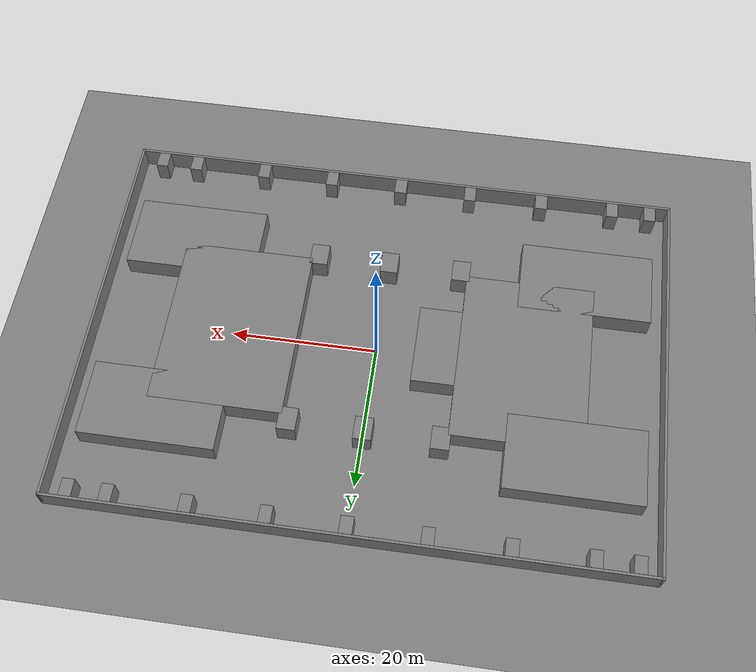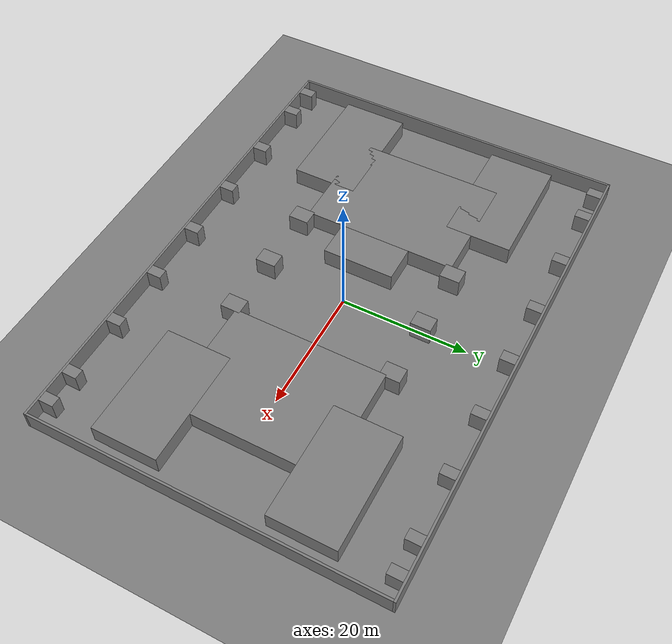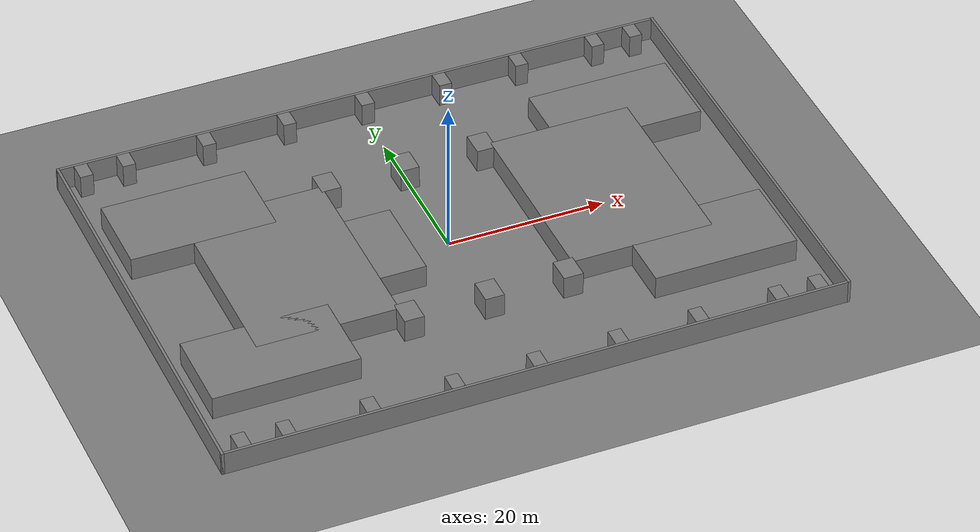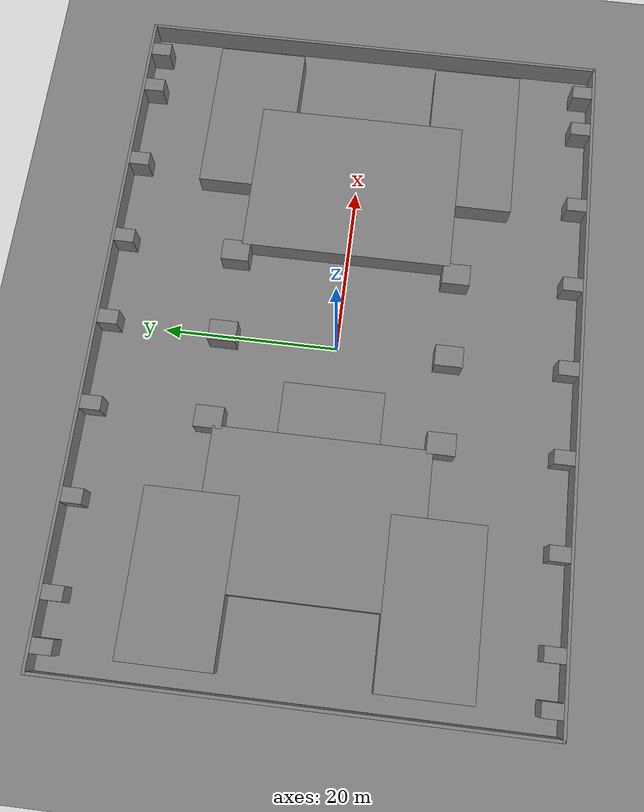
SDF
<?xml version="1.0" ?>
<sdf version="1.9">
  <world name="mbr_library">

    <physics name="1ms" type="ignored">
      <max_step_size>0.001</max_step_size>
      <real_time_factor>1.0</real_time_factor>
    </physics>

    <plugin filename="gz-sim-physics-system"
            name="gz::sim::systems::Physics"/>
    <plugin filename="gz-sim-scene-broadcaster-system"
            name="gz::sim::systems::SceneBroadcaster"/>
    <plugin filename="gz-sim-user-commands-system"
            name="gz::sim::systems::UserCommands"/>
    <plugin filename="gz-sim-sensors-system"
            name="gz::sim::systems::Sensors"/>

    <light type="directional" name="sun">
      <cast_shadows>true</cast_shadows>
      <pose>0 0 10 0 0 0</pose>

      <direction>-0.5 0.1 -1</direction>

      <diffuse>1.0 1.0 1.0 1</diffuse>
      <specular>0.3 0.3 0.3 1</specular>

      <attenuation>
        <range>1000</range>
        <constant>0.9</constant>
        <linear>0.01</linear>
        <quadratic>0.001</quadratic>
      </attenuation>
    </light>

    <scene>
      <ambient>0.5 0.5 0.5 1</ambient>
      <background>0.8 0.8 0.9 1</background>
    </scene>

    <!-- Ground plane -->
    <model name="ground_plane">
      <static>true</static>
      <link name="link">
        <collision name="collision">
          <geometry><plane><normal>0 0 1</normal></plane></geometry>
        </collision>
        <visual name="visual">
          <geometry><plane><normal>0 0 1</normal><size>200 200</size></plane></geometry>
          <material>
            <ambient>0.5 0.5 0.5 1</ambient>
            <diffuse>0.5 0.5 0.5 1</diffuse>
            <specular>0.1 0.1 0.1 1</specular>
          </material>
        </visual>
      </link>
    </model>

    <!-- Outer Walls -->
    <model name="wall_north">
      <static>true</static>
      <pose>0.000 27.601 1.500 0 0 0</pose>
      <link name="link">
        <collision name="collision">
          <geometry><box><size>78.231 0.354 3.0</size></box></geometry>
        </collision>
        <visual name="visual">
          <geometry><box><size>78.231 0.354 3.0</size></box></geometry>
          <material>
            <ambient>0.5 0.5 0.5 1</ambient>
            <diffuse>0.5 0.5 0.5 1</diffuse>
            <specular>0.1 0.1 0.1 1</specular>
          </material>
        </visual>
      </link>
    </model>

    <model name="wall_south">
      <static>true</static>
      <pose>0.000 -27.601 1.500 0 0 0</pose>
      <link name="link">
        <collision name="collision">
          <geometry><box><size>78.231 0.354 3.0</size></box></geometry>
        </collision>
        <visual name="visual">
          <geometry><box><size>78.231 0.354 3.0</size></box></geometry>
          <material>
            <ambient>0.5 0.5 0.5 1</ambient>
            <diffuse>0.5 0.5 0.5 1</diffuse>
            <specular>0.1 0.1 0.1 1</specular>
          </material>
        </visual>
      </link>
    </model>

    <model name="wall_west">
      <static>true</static>
      <pose>-38.938 0.000 1.500 0 0 0</pose>
      <link name="link">
        <collision name="collision">
          <geometry><box><size>0.354 55.556 3.0</size></box></geometry>
        </collision>
        <visual name="visual">
          <geometry><box><size>0.354 55.556 3.0</size></box></geometry>
          <material>
            <ambient>0.5 0.5 0.5 1</ambient>
            <diffuse>0.5 0.5 0.5 1</diffuse>
            <specular>0.1 0.1 0.1 1</specular>
          </material>
        </visual>
      </link>
    </model>

    <model name="wall_east">
      <static>true</static>
      <pose>38.938 0.000 1.500 0 0 0</pose>
      <link name="link">
        <collision name="collision">
          <geometry><box><size>0.354 55.556 3.0</size></box></geometry>
        </collision>
        <visual name="visual">
          <geometry><box><size>0.354 55.556 3.0</size></box></geometry>
          <material>
            <ambient>0.5 0.5 0.5 1</ambient>
            <diffuse>0.5 0.5 0.5 1</diffuse>
            <specular>0.1 0.1 0.1 1</specular>
          </material>
        </visual>
      </link>
    </model>

    <!-- Pillars boardering north wall -->
    <model name="wall_north_a">
      <static>true</static>
      <pose>-36.175 26.254 1.500 0 0 0</pose>
      <link name="link">
        <collision name="collision">
          <geometry><box><size>1.630 2.338 3.0</size></box></geometry>
        </collision>
        <visual name="visual">
          <geometry><box><size>1.630 2.338 3.0</size></box></geometry>
          <material>
            <ambient>0.5 0.5 0.5 1</ambient>
            <diffuse>0.5 0.5 0.5 1</diffuse>
            <specular>0.1 0.1 0.1 1</specular>
          </material>
        </visual>
      </link>
    </model>

    <model name="wall_north_b">
      <static>true</static>
      <pose>-30.789 26.254 1.500 0 0 0</pose>
      <link name="link">
        <collision name="collision">
          <geometry><box><size>1.630 2.338 3.0</size></box></geometry>
        </collision>
        <visual name="visual">
          <geometry><box><size>1.630 2.338 3.0</size></box></geometry>
          <material>
            <ambient>0.5 0.5 0.5 1</ambient>
            <diffuse>0.5 0.5 0.5 1</diffuse>
            <specular>0.1 0.1 0.1 1</specular>
          </material>
        </visual>
      </link>
    </model>

    <model name="wall_north_c">
      <static>true</static>
      <pose>-20.550 26.254 1.500 0 0 0</pose>
      <link name="link">
        <collision name="collision">
          <geometry><box><size>1.701 2.338 3.0</size></box></geometry>
        </collision>
        <visual name="visual">
          <geometry><box><size>1.701 2.338 3.0</size></box></geometry>
          <material>
            <ambient>0.5 0.5 0.5 1</ambient>
            <diffuse>0.5 0.5 0.5 1</diffuse>
            <specular>0.1 0.1 0.1 1</specular>
          </material>
        </visual>
      </link>
    </model>

    <model name="wall_north_d">
      <static>true</static>
      <pose>-10.169 26.254 1.500 0 0 0</pose>
      <link name="link">
        <collision name="collision">
          <geometry><box><size>1.630 2.338 3.0</size></box></geometry>
        </collision>
        <visual name="visual">
          <geometry><box><size>1.630 2.338 3.0</size></box></geometry>
          <material>
            <ambient>0.5 0.5 0.5 1</ambient>
            <diffuse>0.5 0.5 0.5 1</diffuse>
            <specular>0.1 0.1 0.1 1</specular>
          </material>
        </visual>
      </link>
    </model>

    <model name="wall_north_e">
      <static>true</static>
      <pose>0.000 26.254 1.500 0 0 0</pose>
      <link name="link">
        <collision name="collision">
          <geometry><box><size>1.701 2.338 3.0</size></box></geometry>
        </collision>
        <visual name="visual">
          <geometry><box><size>1.701 2.338 3.0</size></box></geometry>
          <material>
            <ambient>0.5 0.5 0.5 1</ambient>
            <diffuse>0.5 0.5 0.5 1</diffuse>
            <specular>0.1 0.1 0.1 1</specular>
          </material>
        </visual>
      </link>
    </model>

    <model name="wall_north_f">
      <static>true</static>
      <pose>10.169 26.254 1.500 0 0 0</pose>
      <link name="link">
        <collision name="collision">
          <geometry><box><size>1.630 2.338 3.0</size></box></geometry>
        </collision>
        <visual name="visual">
          <geometry><box><size>1.630 2.338 3.0</size></box></geometry>
          <material>
            <ambient>0.5 0.5 0.5 1</ambient>
            <diffuse>0.5 0.5 0.5 1</diffuse>
            <specular>0.1 0.1 0.1 1</specular>
          </material>
        </visual>
      </link>
    </model>

    <model name="wall_north_g">
      <static>true</static>
      <pose>20.302 26.254 1.500 0 0 0</pose>
      <link name="link">
        <collision name="collision">
          <geometry><box><size>1.630 2.338 3.0</size></box></geometry>
        </collision>
        <visual name="visual">
          <geometry><box><size>1.630 2.338 3.0</size></box></geometry>
          <material>
            <ambient>0.5 0.5 0.5 1</ambient>
            <diffuse>0.5 0.5 0.5 1</diffuse>
            <specular>0.1 0.1 0.1 1</specular>
          </material>
        </visual>
      </link>
    </model>

    <model name="wall_north_h">
      <static>true</static>
      <pose>30.506 26.254 1.500 0 0 0</pose>
      <link name="link">
        <collision name="collision">
          <geometry><box><size>1.630 2.338 3.0</size></box></geometry>
        </collision>
        <visual name="visual">
          <geometry><box><size>1.630 2.338 3.0</size></box></geometry>
          <material>
            <ambient>0.5 0.5 0.5 1</ambient>
            <diffuse>0.5 0.5 0.5 1</diffuse>
            <specular>0.1 0.1 0.1 1</specular>
          </material>
        </visual>
      </link>
    </model>

    <model name="wall_north_i">
      <static>true</static>
      <pose>35.608 26.254 1.500 0 0 0</pose>
      <link name="link">
        <collision name="collision">
          <geometry><box><size>1.630 2.338 3.0</size></box></geometry>
        </collision>
        <visual name="visual">
          <geometry><box><size>1.630 2.338 3.0</size></box></geometry>
          <material>
            <ambient>0.5 0.5 0.5 1</ambient>
            <diffuse>0.5 0.5 0.5 1</diffuse>
            <specular>0.1 0.1 0.1 1</specular>
          </material>
        </visual>
      </link>
    </model>

    <!-- Pillars boardering south wall -->
    <model name="wall_south_a">
      <static>true</static>
      <pose>-36.175 -26.254 1.500 0 0 0</pose>
      <link name="link">
        <collision name="collision">
          <geometry><box><size>1.630 2.338 3.0</size></box></geometry>
        </collision>
        <visual name="visual">
          <geometry><box><size>1.630 2.338 3.0</size></box></geometry>
          <material>
            <ambient>0.5 0.5 0.5 1</ambient>
            <diffuse>0.5 0.5 0.5 1</diffuse>
            <specular>0.1 0.1 0.1 1</specular>
          </material>
        </visual>
      </link>
    </model>

    <model name="wall_south_b">
      <static>true</static>
      <pose>-30.789 -26.254 1.500 0 0 0</pose>
      <link name="link">
        <collision name="collision">
          <geometry><box><size>1.630 2.338 3.0</size></box></geometry>
        </collision>
        <visual name="visual">
          <geometry><box><size>1.630 2.338 3.0</size></box></geometry>
          <material>
            <ambient>0.5 0.5 0.5 1</ambient>
            <diffuse>0.5 0.5 0.5 1</diffuse>
            <specular>0.1 0.1 0.1 1</specular>
          </material>
        </visual>
      </link>
    </model>

    <model name="wall_south_c">
      <static>true</static>
      <pose>-20.550 -26.254 1.500 0 0 0</pose>
      <link name="link">
        <collision name="collision">
          <geometry><box><size>1.701 2.338 3.0</size></box></geometry>
        </collision>
        <visual name="visual">
          <geometry><box><size>1.701 2.338 3.0</size></box></geometry>
          <material>
            <ambient>0.5 0.5 0.5 1</ambient>
            <diffuse>0.5 0.5 0.5 1</diffuse>
            <specular>0.1 0.1 0.1 1</specular>
          </material>
        </visual>
      </link>
    </model>

    <model name="wall_south_d">
      <static>true</static>
      <pose>-10.169 -26.254 1.500 0 0 0</pose>
      <link name="link">
        <collision name="collision">
          <geometry><box><size>1.630 2.338 3.0</size></box></geometry>
        </collision>
        <visual name="visual">
          <geometry><box><size>1.630 2.338 3.0</size></box></geometry>
          <material>
            <ambient>0.5 0.5 0.5 1</ambient>
            <diffuse>0.5 0.5 0.5 1</diffuse>
            <specular>0.1 0.1 0.1 1</specular>
          </material>
        </visual>
      </link>
    </model>

    <model name="wall_south_e">
      <static>true</static>
      <pose>0.000 -26.254 1.500 0 0 0</pose>
      <link name="link">
        <collision name="collision">
          <geometry><box><size>1.701 2.338 3.0</size></box></geometry>
        </collision>
        <visual name="visual">
          <geometry><box><size>1.701 2.338 3.0</size></box></geometry>
          <material>
            <ambient>0.5 0.5 0.5 1</ambient>
            <diffuse>0.5 0.5 0.5 1</diffuse>
            <specular>0.1 0.1 0.1 1</specular>
          </material>
        </visual>
      </link>
    </model>

    <model name="wall_south_f">
      <static>true</static>
      <pose>10.169 -26.254 1.500 0 0 0</pose>
      <link name="link">
        <collision name="collision">
          <geometry><box><size>1.630 2.338 3.0</size></box></geometry>
        </collision>
        <visual name="visual">
          <geometry><box><size>1.630 2.338 3.0</size></box></geometry>
          <material>
            <ambient>0.5 0.5 0.5 1</ambient>
            <diffuse>0.5 0.5 0.5 1</diffuse>
            <specular>0.1 0.1 0.1 1</specular>
          </material>
        </visual>
      </link>
    </model>

    <model name="wall_south_g">
      <static>true</static>
      <pose>20.302 -26.254 1.500 0 0 0</pose>
      <link name="link">
        <collision name="collision">
          <geometry><box><size>1.630 2.338 3.0</size></box></geometry>
        </collision>
        <visual name="visual">
          <geometry><box><size>1.630 2.338 3.0</size></box></geometry>
          <material>
            <ambient>0.5 0.5 0.5 1</ambient>
            <diffuse>0.5 0.5 0.5 1</diffuse>
            <specular>0.1 0.1 0.1 1</specular>
          </material>
        </visual>
      </link>
    </model>

    <model name="wall_south_h">
      <static>true</static>
      <pose>30.506 -26.254 1.500 0 0 0</pose>
      <link name="link">
        <collision name="collision">
          <geometry><box><size>1.630 2.338 3.0</size></box></geometry>
        </collision>
        <visual name="visual">
          <geometry><box><size>1.630 2.338 3.0</size></box></geometry>
          <material>
            <ambient>0.5 0.5 0.5 1</ambient>
            <diffuse>0.5 0.5 0.5 1</diffuse>
            <specular>0.1 0.1 0.1 1</specular>
          </material>
        </visual>
      </link>
    </model>

    <model name="wall_south_i">
      <static>true</static>
      <pose>35.608 -26.254 1.500 0 0 0</pose>
      <link name="link">
        <collision name="collision">
          <geometry><box><size>1.630 2.338 3.0</size></box></geometry>
        </collision>
        <visual name="visual">
          <geometry><box><size>1.630 2.338 3.0</size></box></geometry>
          <material>
            <ambient>0.5 0.5 0.5 1</ambient>
            <diffuse>0.5 0.5 0.5 1</diffuse>
            <specular>0.1 0.1 0.1 1</specular>
          </material>
        </visual>
      </link>
    </model>

    <!-- Pillars center of library -->
    <model name="centre_pillar_a">
      <static>true</static>
      <pose>-0.142 13.003 1.500 0 0 0</pose>
      <link name="link">
        <collision name="collision">
          <geometry><box><size>2.409 3.189 3.0</size></box></geometry>
        </collision>
        <visual name="visual">
          <geometry><box><size>2.409 3.189 3.0</size></box></geometry>
          <material>
            <ambient>0.5 0.5 0.5 1</ambient>
            <diffuse>0.5 0.5 0.5 1</diffuse>
            <specular>0.1 0.1 0.1 1</specular>
          </material>
        </visual>
      </link>
    </model>

    <model name="centre_pillar_b">
      <static>true</static>
      <pose>-0.142 -12.791 1.500 0 0 0</pose>
      <link name="link">
        <collision name="collision">
          <geometry><box><size>2.409 3.189 3.0</size></box></geometry>
        </collision>
        <visual name="visual">
          <geometry><box><size>2.409 3.189 3.0</size></box></geometry>
          <material>
            <ambient>0.5 0.5 0.5 1</ambient>
            <diffuse>0.5 0.5 0.5 1</diffuse>
            <specular>0.1 0.1 0.1 1</specular>
          </material>
        </visual>
      </link>
    </model>

    <!-- Main Inner West Wall; divided to subsections -->
    <model name="west_structure_top_wing">
      <static>true</static>
      <pose>-27.601 13.499 1.500 0 0 0</pose>
      <link name="link">
        <collision name="collision">
          <geometry><box><size>18.211 10.417 3.0</size></box></geometry>
        </collision>
        <visual name="visual">
          <geometry><box><size>18.211 10.417 3.0</size></box></geometry>
          <material>
            <ambient>0.5 0.5 0.5 1</ambient>
            <diffuse>0.5 0.5 0.5 1</diffuse>
            <specular>0.1 0.1 0.1 1</specular>
          </material>
        </visual>
      </link>
    </model>

    <model name="west_structure_bottom_wing">
      <static>true</static>
      <pose>-27.601 -13.287 1.500 0 0 0</pose>
      <link name="link">
        <collision name="collision">
          <geometry><box><size>18.211 10.417 3.0</size></box></geometry>
        </collision>
        <visual name="visual">
          <geometry><box><size>18.211 10.417 3.0</size></box></geometry>
          <material>
            <ambient>0.5 0.5 0.5 1</ambient>
            <diffuse>0.5 0.5 0.5 1</diffuse>
            <specular>0.1 0.1 0.1 1</specular>
          </material>
        </visual>
      </link>
    </model>

    <model name="west_structure_main_body">
      <static>true</static>
      <pose>-19.983 0.213 1.500 0 0 0</pose>
      <link name="link">
        <collision name="collision">
          <geometry><box><size>17.715 24.376 3.0</size></box></geometry>
        </collision>
        <visual name="visual">
          <geometry><box><size>17.715 24.376 3.0</size></box></geometry>
          <material>
            <ambient>0.5 0.5 0.5 1</ambient>
            <diffuse>0.5 0.5 0.5 1</diffuse>
            <specular>0.1 0.1 0.1 1</specular>
          </material>
        </visual>
      </link>
    </model>

    <model name="west_structure_right_ext">
      <static>true</static>
      <pose>-8.220 -0.425 1.500 0 0 0</pose>
      <link name="link">
        <collision name="collision">
          <geometry><box><size>5.811 11.338 3.0</size></box></geometry>
        </collision>
        <visual name="visual">
          <geometry><box><size>5.811 11.338 3.0</size></box></geometry>
          <material>
            <ambient>0.5 0.5 0.5 1</ambient>
            <diffuse>0.5 0.5 0.5 1</diffuse>
            <specular>0.1 0.1 0.1 1</specular>
          </material>
        </visual>
      </link>
    </model>

    <model name="west_pillar_top">
      <static>true</static>
      <pose>-10.240 13.003 1.500 0 0 0</pose>
      <link name="link">
        <collision name="collision">
          <geometry><box><size>2.480 3.189 3.0</size></box></geometry>
        </collision>
        <visual name="visual">
          <geometry><box><size>2.480 3.189 3.0</size></box></geometry>
          <material>
            <ambient>0.5 0.5 0.5 1</ambient>
            <diffuse>0.5 0.5 0.5 1</diffuse>
            <specular>0.1 0.1 0.1 1</specular>
          </material>
        </visual>
      </link>
    </model>

    <model name="west_pillar_bottom">
      <static>true</static>
      <pose>-10.240 -12.791 1.500 0 0 0</pose>
      <link name="link">
        <collision name="collision">
          <geometry><box><size>2.480 3.189 3.0</size></box></geometry>
        </collision>
        <visual name="visual">
          <geometry><box><size>2.480 3.189 3.0</size></box></geometry>
          <material>
            <ambient>0.5 0.5 0.5 1</ambient>
            <diffuse>0.5 0.5 0.5 1</diffuse>
            <specular>0.1 0.1 0.1 1</specular>
          </material>
        </visual>
      </link>
    </model>

    <!-- Main Inner East Wall; divided to subsections -->
    <model name="east_structure_top_wing">
      <static>true</static>
      <pose>27.530 13.499 1.500 0 0 0</pose>
      <link name="link">
        <collision name="collision">
          <geometry><box><size>18.211 10.417 3.0</size></box></geometry>
        </collision>
        <visual name="visual">
          <geometry><box><size>18.211 10.417 3.0</size></box></geometry>
          <material>
            <ambient>0.5 0.5 0.5 1</ambient>
            <diffuse>0.5 0.5 0.5 1</diffuse>
            <specular>0.1 0.1 0.1 1</specular>
          </material>
        </visual>
      </link>
    </model>

    <model name="east_structure_bottom_wing">
      <static>true</static>
      <pose>27.530 -13.287 1.500 0 0 0</pose>
      <link name="link">
        <collision name="collision">
          <geometry><box><size>18.211 10.417 3.0</size></box></geometry>
        </collision>
        <visual name="visual">
          <geometry><box><size>18.211 10.417 3.0</size></box></geometry>
          <material>
            <ambient>0.5 0.5 0.5 1</ambient>
            <diffuse>0.5 0.5 0.5 1</diffuse>
            <specular>0.1 0.1 0.1 1</specular>
          </material>
        </visual>
      </link>
    </model>

    <model name="east_structure_main_body">
      <static>true</static>
      <pose>19.700 0.213 1.500 0 0 0</pose>
      <link name="link">
        <collision name="collision">
          <geometry><box><size>17.999 24.376 3.0</size></box></geometry>
        </collision>
        <visual name="visual">
          <geometry><box><size>17.999 24.376 3.0</size></box></geometry>
          <material>
            <ambient>0.5 0.5 0.5 1</ambient>
            <diffuse>0.5 0.5 0.5 1</diffuse>
            <specular>0.1 0.1 0.1 1</specular>
          </material>
        </visual>
      </link>
    </model>

    <model name="east_pillar_top">
      <static>true</static>
      <pose>9.814 13.003 1.500 0 0 0</pose>
      <link name="link">
        <collision name="collision">
          <geometry><box><size>2.480 3.189 3.0</size></box></geometry>
        </collision>
        <visual name="visual">
          <geometry><box><size>2.480 3.189 3.0</size></box></geometry>
          <material>
            <ambient>0.5 0.5 0.5 1</ambient>
            <diffuse>0.5 0.5 0.5 1</diffuse>
            <specular>0.1 0.1 0.1 1</specular>
          </material>
        </visual>
      </link>
    </model>

    <model name="east_pillar_bottom">
      <static>true</static>
      <pose>9.814 -12.791 1.500 0 0 0</pose>
      <link name="link">
        <collision name="collision">
          <geometry><box><size>2.480 3.189 3.0</size></box></geometry>
        </collision>
        <visual name="visual">
          <geometry><box><size>2.480 3.189 3.0</size></box></geometry>
          <material>
            <ambient>0.5 0.5 0.5 1</ambient>
            <diffuse>0.5 0.5 0.5 1</diffuse>
            <specular>0.1 0.1 0.1 1</specular>
          </material>
        </visual>
      </link>
    </model>

  </world>
</sdf>
